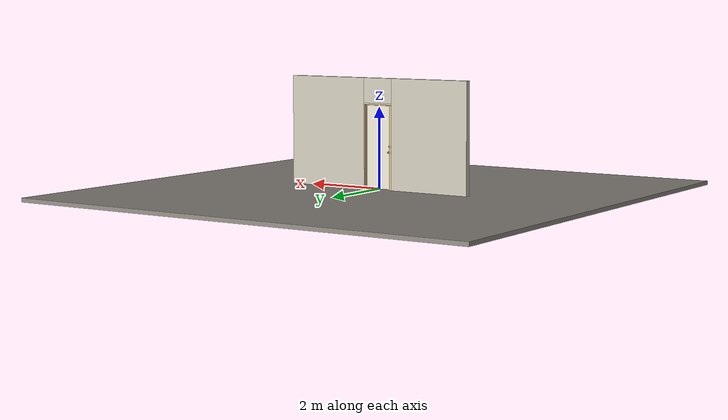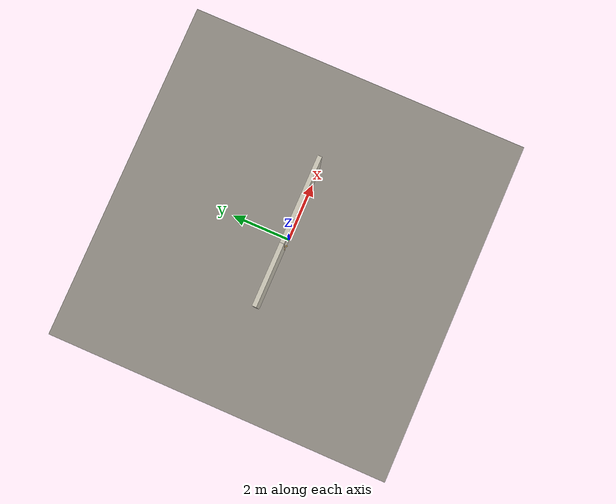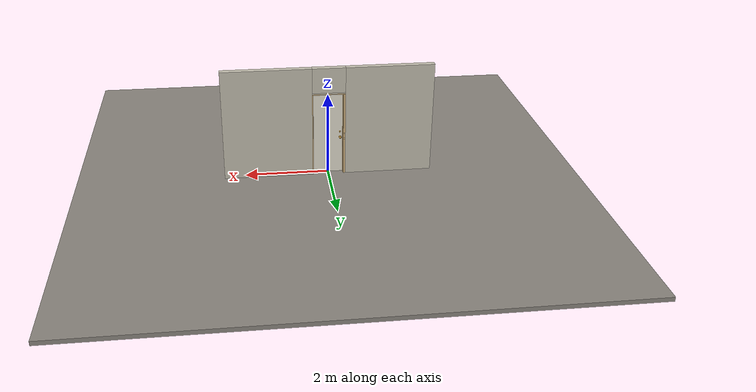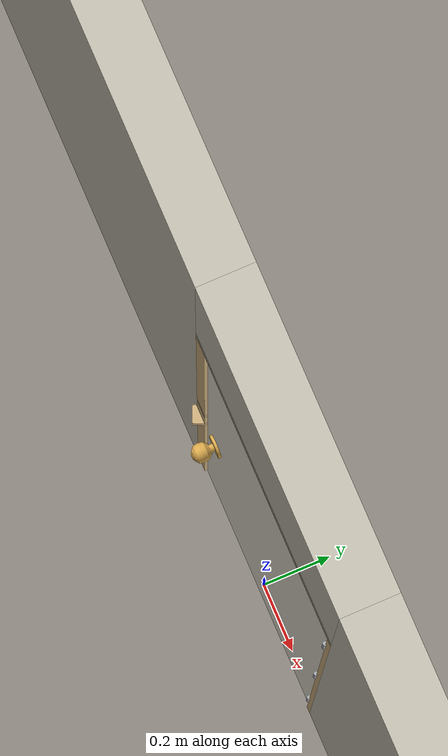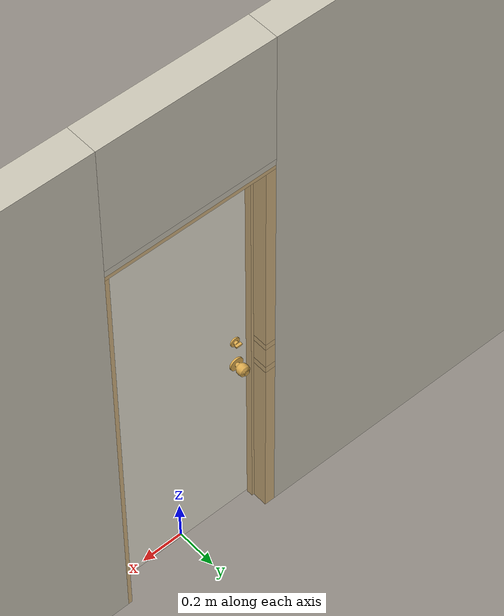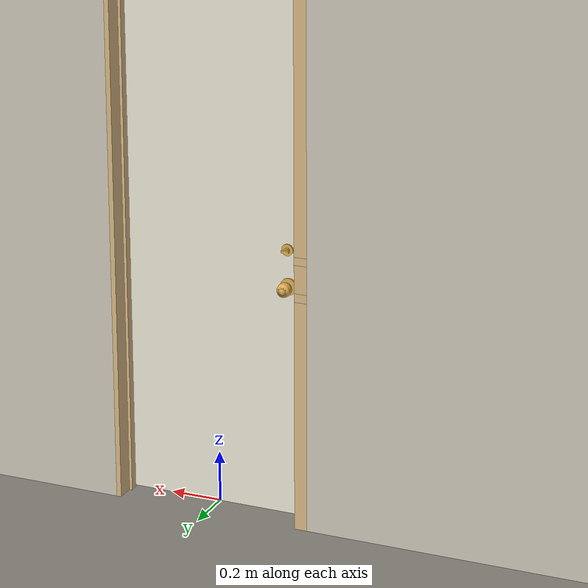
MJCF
<?xml version="1.0" ?>
<mujoco model="db0051_swing_single_simple">
  <compiler angle="radian" meshdir="../../hardware" texturedir="../../textures" autolimits="true" inertiafromgeom="false"/>
  <option timestep="0.002" integrator="implicitfast" cone="elliptic" impratio="10" noslip_iterations="3">
    <flag multiccd="enable"/>
  </option>
  <size memory="16M"/>
  <default>
    <geom condim="4" solref="0.005 1" solimp="0.95 0.99 0.001"/>
    <joint solreflimit="0.005 1" solimplimit="0.95 0.99 0.001"/>
    <tendon solreflimit="0.005 1"/>
    <equality solref="0.002 1"/>
  </default>
  <visual>
    <headlight ambient="0.4 0.4 0.4" diffuse="0.7 0.7 0.7" specular="0.2 0.2 0.2"/>
    <quality shadowsize="4096"/>
    <map znear="0.01" zfar="60"/>
  </visual>
  <asset>
    <mesh name="hinge_96510cf394" file="hinge_96510cf394.obj"/>
    <mesh name="hinge_jamb_7fd4ca52b2" file="hinge_jamb_7fd4ca52b2.obj"/>
    <mesh name="knob_d1888f6f03" file="knob_d1888f6f03.obj"/>
    <mesh name="thumbturn_eb5c9899a3" file="thumbturn_eb5c9899a3.obj"/>
    <material name="mat_floor" rgba="0.55 0.53 0.5 1" specular="0.2" shininess="0.15" reflectance="0"/>
    <material name="mat_wall" rgba="0.78 0.76 0.7 1" specular="0.2" shininess="0.1" reflectance="0"/>
    <material name="mat_leaf" rgba="0.9 0.88 0.82 1" specular="0.2" shininess="0.45" reflectance="0"/>
    <material name="mat_leaf_louver" rgba="0.765 0.748 0.697 1" specular="0.2" shininess="0.4" reflectance="0"/>
    <material name="mat_hinge" rgba="0.65 0.66 0.68 1" specular="0.74" shininess="0.5" reflectance="0.36"/>
    <material name="mat_op_brass" rgba="0.85 0.66 0.3 1" specular="0.8" shininess="0.75" reflectance="0.4"/>
    <material name="mat_trim" rgba="0.85 0.66 0.3 1" specular="0.8" shininess="0.75" reflectance="0.4"/>
    <material name="mat_bolt" rgba="0.85 0.66 0.3 1" specular="0.8" shininess="0.75" reflectance="0.4"/>
    <material name="mat_deadbolt" rgba="0.85 0.66 0.3 1" specular="0.8" shininess="0.75" reflectance="0.4"/>
    <material name="mat_frame" rgba="0.82 0.7 0.5 1" specular="0.2" shininess="0.45" reflectance="0"/>
    <texture name="skybox" type="skybox" builtin="gradient" rgb1="0.6 0.7 0.85" rgb2="0.9 0.92 0.95" width="256" height="256"/>
  </asset>
  <worldbody>
    <light name="sun" pos="1.5 -2.5 4" dir="-0.3 0.5 -0.8" directional="true" diffuse="0.8 0.8 0.8" specular="0.3 0.3 0.3" castshadow="true"/>
    <light name="fill" pos="-1.5 2.5 3" dir="0.3 -0.5 -0.7" directional="true" diffuse="0.35 0.35 0.4" castshadow="false"/>
    <camera name="robot_view" pos="0 -2.494187 1.734312" xyaxes="1 0 0 0 0.26963 0.962964" fovy="52"/>
    <camera name="far_view" pos="0 2.590187 1.734312" xyaxes="-1 0 0 0 -0.26963 0.962964" fovy="52"/>
    <camera name="iso" pos="-1.932062 -2.087438 2.141063" xyaxes="0.741536 -0.670913 0 0.242917 0.268487 0.932151" fovy="46"/>
    <camera name="detail_handle" pos="-0.115 -0.864 1.194" xyaxes="0.97561 0.219512 0 -0.070934 0.315262 0.94635" fovy="38"/>
    <geom name="floor" type="box" size="6 6 0.05" pos="0 0 -0.05" material="mat_floor" group="0" contype="1" conaffinity="1" friction="0.8 0.005 0.0001" density="2400"/>
    <geom name="wall_left" type="box" size="1.046 0.0725 1.35" pos="-1.454 0.048 1.35" material="mat_wall" group="0" contype="1" conaffinity="1" friction="0.6 0.005 0.0001" density="800"/>
    <geom name="wall_right" type="box" size="1.061 0.0725 1.35" pos="1.439 0.048 1.35" material="mat_wall" group="0" contype="1" conaffinity="1" friction="0.6 0.005 0.0001" density="800"/>
    <geom name="wall_header" type="box" size="0.393 0.0725 0.303" pos="-0.015 0.048 2.397" material="mat_wall" group="0" contype="1" conaffinity="1" friction="0.6 0.005 0.0001" density="800"/>
    <geom name="hinge_0_jamb" type="mesh" mesh="hinge_jamb_7fd4ca52b2" pos="0.356 -0.0245 0.259" quat="0 0 1 0" material="mat_hinge" group="1" contype="0" conaffinity="0" density="7850"/>
    <geom name="hinge_1_jamb" type="mesh" mesh="hinge_jamb_7fd4ca52b2" pos="0.356 -0.0245 1.025" quat="0 0 1 0" material="mat_hinge" group="1" contype="0" conaffinity="0" density="7850"/>
    <geom name="hinge_2_jamb" type="mesh" mesh="hinge_jamb_7fd4ca52b2" pos="0.356 -0.0245 1.861" quat="0 0 1 0" material="mat_hinge" group="1" contype="0" conaffinity="0" density="7850"/>
    <geom name="leaf_deadbolt_strike_b" type="box" size="0.0155 0.003 0.0005" pos="-0.3585 0 1.0355" quat="0.5 0.5 0.5 0.5" material="mat_deadbolt" group="1" contype="0" conaffinity="0" density="7800"/>
    <geom name="leaf_deadbolt_strike_l" type="box" size="0.003 0.0155 0.0005" pos="-0.3585 -0.0125 1.054" quat="0.5 0.5 0.5 0.5" material="mat_deadbolt" group="1" contype="0" conaffinity="0" density="7800"/>
    <geom name="leaf_deadbolt_strike_t" type="box" size="0.0155 0.003 0.0005" pos="-0.3585 0 1.0725" quat="0.5 0.5 0.5 0.5" material="mat_deadbolt" group="1" contype="0" conaffinity="0" density="7800"/>
    <geom name="leaf_deadbolt_strike_r" type="box" size="0.003 0.0155 0.0005" pos="-0.3585 0.0125 1.054" quat="0.5 0.5 0.5 0.5" material="mat_deadbolt" group="1" contype="0" conaffinity="0" density="7800"/>
    <geom name="jamb_hinge" type="box" size="0.0095 0.0725 1.0225" pos="0.3685 0.048 1.0225" material="mat_frame" group="0" contype="1" conaffinity="1" friction="0.6 0.005 0.0001" density="400"/>
    <geom name="strike_914_wall_n" type="box" size="0.0245 0.056325 0.0167" pos="-0.3835 0.064175 0.914" material="mat_frame" group="0" contype="1" conaffinity="1" friction="0.6 0.005 0.0001" density="400"/>
    <geom name="strike_914_wall_p" type="box" size="0.0245 0.008 0.0167" pos="-0.3835 -0.01585 0.914" material="mat_frame" group="0" contype="1" conaffinity="1" friction="0.6 0.005 0.0001" density="400"/>
    <geom name="strike_914_ramp" type="box" size="0.0245 0.01649 0.0167" pos="-0.388136 -0.028673 0.914" quat="0.977148 0 0 -0.212558" material="mat_frame" group="0" contype="1" conaffinity="1" friction="0.12 0.005 0.0001" density="400"/>
    <geom name="strike_914_back" type="box" size="0.01615 0.00785 0.0167" pos="-0.39185 0 0.914" material="mat_frame" group="0" contype="1" conaffinity="1" friction="0.6 0.005 0.0001" density="400"/>
    <geom name="strike_1054_wall_n" type="box" size="0.0245 0.0555 0.0155" pos="-0.3835 0.065 1.054" material="mat_frame" group="0" contype="1" conaffinity="1" friction="0.6 0.005 0.0001" density="400"/>
    <geom name="strike_1054_wall_p" type="box" size="0.0245 0.0075 0.0155" pos="-0.3835 -0.017 1.054" material="mat_frame" group="0" contype="1" conaffinity="1" friction="0.6 0.005 0.0001" density="400"/>
    <geom name="strike_1054_back" type="box" size="0.0098 0.0095 0.0155" pos="-0.3982 0 1.054" material="mat_frame" group="0" contype="1" conaffinity="1" friction="0.6 0.005 0.0001" density="400"/>
    <geom name="jamb_strike_0" type="box" size="0.0245 0.0725 0.44865" pos="-0.3835 0.048 0.44865" material="mat_frame" group="0" contype="1" conaffinity="1" friction="0.6 0.005 0.0001" density="400"/>
    <geom name="jamb_strike_1" type="box" size="0.0245 0.0725 0.0539" pos="-0.3835 0.048 0.9846" material="mat_frame" group="0" contype="1" conaffinity="1" friction="0.6 0.005 0.0001" density="400"/>
    <geom name="jamb_strike_2" type="box" size="0.0245 0.0725 0.48775" pos="-0.3835 0.048 1.55725" material="mat_frame" group="0" contype="1" conaffinity="1" friction="0.6 0.005 0.0001" density="400"/>
    <geom name="jamb_head" type="box" size="0.393 0.0725 0.0095" pos="-0.015 0.048 2.0545" material="mat_frame" group="0" contype="1" conaffinity="1" friction="0.6 0.005 0.0001" density="400"/>
    <geom name="head_stud" type="box" size="0.393 0.0725 0.015" pos="-0.015 0.048 2.079" material="mat_wall" group="0" contype="1" conaffinity="1" friction="0.6 0.005 0.0001" density="500"/>
    <geom name="stop_hinge" type="box" size="0.0055 0.016 1.0225" pos="0.3535 0.034 1.0225" material="mat_frame" group="0" contype="1" conaffinity="1" friction="0.6 0.005 0.0001" density="400"/>
    <geom name="stop_strike" type="box" size="0.0055 0.016 1.0225" pos="-0.3535 0.034 1.0225" material="mat_frame" group="0" contype="1" conaffinity="1" friction="0.6 0.005 0.0001" density="400"/>
    <geom name="stop_head" type="box" size="0.359 0.016 0.0055" pos="0 0.034 2.0395" material="mat_frame" group="0" contype="1" conaffinity="1" friction="0.6 0.005 0.0001" density="400"/>
    <site name="approach_point" pos="0 -1.5 0" quat="1 0 0 0" size="0.05" rgba="0.2 0.9 0.2 0.5" group="4"/>
    <site name="goal_point" pos="0 1.5 0" quat="1 0 0 0" size="0.05" rgba="0.2 0.9 0.2 0.5" group="4"/>
    <site name="door_plane_center" pos="0 0 1.0225" quat="1 0 0 0" size="0.02" rgba="0.2 0.9 0.2 0.5" group="4"/>
    <body name="leaf" pos="0.359 0 0">
      <inertial pos="-0.346703 -0.00052 1.025734" mass="11.261904" quat="0.500734 -0.498733 0.501248 0.49928" diaginertia="0.510215862 3.901285773 4.409004949"/>
      <joint name="leaf_hinge" type="hinge" axis="0 0 1" pos="-0.003 -0.0245 0" limited="true" range="0 1.745329" damping="0.143782" frictionloss="0.171487" armature="0.02"/>
      <geom name="leaf_slab" type="box" size="0.3555 0.0175 1.016" pos="-0.3585 0 1.025" material="mat_leaf" group="0" contype="1" conaffinity="1" friction="0.35 0.005 0.0001" density="1"/>
      <geom name="hinge_0" type="mesh" mesh="hinge_96510cf394" pos="-0.003 -0.0245 0.259" quat="0 0 1 0" material="mat_hinge" group="1" contype="0" conaffinity="0" density="7850"/>
      <geom name="hinge_1" type="mesh" mesh="hinge_96510cf394" pos="-0.003 -0.0245 1.025" quat="0 0 1 0" material="mat_hinge" group="1" contype="0" conaffinity="0" density="7850"/>
      <geom name="hinge_2" type="mesh" mesh="hinge_96510cf394" pos="-0.003 -0.0245 1.861" quat="0 0 1 0" material="mat_hinge" group="1" contype="0" conaffinity="0" density="7850"/>
      <geom name="leaf_latch_bolt_faceplate" type="box" size="0.0006 0.01235 0.0267" pos="-0.7134 0 0.914" material="mat_bolt" group="1" contype="0" conaffinity="0" density="8500"/>
      <geom name="leaf_deadbolt_faceplate" type="box" size="0.0006 0.014 0.0245" pos="-0.7134 0 1.054" material="mat_deadbolt" group="1" contype="0" conaffinity="0" density="8500"/>
      <site name="leaf_edge_mid" pos="-0.714 0 1.016" quat="1 0 0 0" size="0.02" rgba="0.2 0.9 0.2 0.5" group="4"/>
      <body name="leaf_handle" pos="-0.654 0 0.914">
        <inertial pos="0 0 0" mass="1.098683" quat="0.5 0.5 0.5 0.5" diaginertia="0.000311555 0.003696071 0.003696071"/>
        <joint name="leaf_handle_hinge" type="hinge" axis="0 1 0" limited="true" range="0 0.87" damping="0.143613" frictionloss="0.038" stiffness="0.5" springref="-0.5" armature="0.01"/>
        <geom name="leaf_handle_knob_n" type="mesh" mesh="knob_d1888f6f03" pos="0 -0.0175 0" quat="0 0 -0.707107 0.707107" material="mat_op_brass" group="1" contype="0" conaffinity="0" density="3000"/>
        <geom name="leaf_handle_knob_col_n" type="sphere" size="0.0243" pos="0 -0.064 0" material="mat_op_brass" group="0" contype="1" conaffinity="1" friction="0.9 0.01 0.0001" density="3000"/>
        <geom name="leaf_handle_knob_neck_n" type="cylinder" size="0.011 0.012" pos="0 -0.0295 0" quat="0.707107 -0.707107 0 0" material="mat_op_brass" group="3" contype="1" conaffinity="1" rgba="0.8 0.3 0.3 0.25" friction="0.6 0.005 0.0001" density="3000"/>
        <geom name="leaf_handle_knob_p" type="mesh" mesh="knob_d1888f6f03" pos="0 0.0175 0" quat="0 0 0.707107 0.707107" material="mat_op_brass" group="1" contype="0" conaffinity="0" density="3000"/>
        <geom name="leaf_handle_knob_col_p" type="sphere" size="0.0243" pos="0 0.064 0" material="mat_op_brass" group="0" contype="1" conaffinity="1" friction="0.9 0.01 0.0001" density="3000"/>
        <geom name="leaf_handle_knob_neck_p" type="cylinder" size="0.011 0.012" pos="0 0.0295 0" quat="0.707107 -0.707107 0 0" material="mat_op_brass" group="3" contype="1" conaffinity="1" rgba="0.8 0.3 0.3 0.25" friction="0.6 0.005 0.0001" density="3000"/>
        <site name="leaf_handle_grip_n" pos="0 -0.064 0" quat="1 0 0 0" size="0.012" rgba="0.2 0.9 0.2 0.5" group="4"/>
        <site name="leaf_handle_grip_p" pos="0 0.064 0" quat="1 0 0 0" size="0.012" rgba="0.2 0.9 0.2 0.5" group="4"/>
      </body>
      <body name="leaf_latch_bolt" pos="-0.714 0 0.914">
        <inertial pos="0.00865 0 0" mass="0.041419" quat="0.92388 0.382683 0 0" diaginertia="0.000000798 0.000005598 0.000005598"/>
        <joint name="leaf_latch_bolt_slide" type="slide" axis="1 0 0" limited="true" range="0 0.0127" damping="2" frictionloss="0.3" stiffness="300" springref="-0.008333" armature="0.1"/>
        <geom name="leaf_latch_bolt_capsule" type="capsule" size="0.00635 0.015" pos="0.00865 0 0" quat="0.707107 0 -0.707107 0" material="mat_bolt" group="0" contype="1" conaffinity="1" friction="0.2 0.005 0.0001" density="8500"/>
      </body>
      <body name="leaf_deadbolt" pos="-0.714 0 1.054">
        <inertial pos="0.0277 0 0" mass="0.18836" quat="0 0 0.707107 0.707107" diaginertia="0.000013829 0.000052194 0.000057986"/>
        <joint name="leaf_deadbolt_slide" type="slide" axis="1 0 0" limited="true" range="0 0.0254" damping="5" frictionloss="1.5" armature="0.1" ref="0.0254"/>
        <geom name="leaf_deadbolt_box" type="box" size="0.0277 0.008 0.0125" pos="0.0277 0 0" material="mat_deadbolt" group="0" contype="1" conaffinity="1" friction="0.3 0.005 0.0001" density="8500"/>
      </body>
      <body name="leaf_deadbolt_thumbturn" pos="-0.649 0.0175 1.054">
        <inertial pos="0 0.012928 0" mass="0.178946" quat="0.000001 -0.707107 0.707107 -0.000001" diaginertia="0.000026045 0.000026215 0.000032438"/>
        <joint name="leaf_deadbolt_thumbturn_hinge" type="hinge" axis="0 -1 0" limited="true" range="0 1.5708" damping="0.05" frictionloss="0.3" armature="0.005" ref="1.5708"/>
        <geom name="leaf_deadbolt_thumbturn_mesh" type="mesh" mesh="thumbturn_eb5c9899a3" pos="0 0 0" quat="0.500001 -0.500001 0.499999 0.499999" material="mat_deadbolt" group="0" contype="1" conaffinity="1" friction="0.6 0.005 0.0001" density="7100"/>
        <geom name="leaf_deadbolt_thumbturn_col" type="box" size="0.006 0.012 0.016" pos="0 0.02 0" quat="0.707105 0 -0.707108 0" material="mat_deadbolt" group="3" contype="1" conaffinity="1" rgba="0.8 0.3 0.3 0.25" friction="0.6 0.005 0.0001" density="7100"/>
      </body>
    </body>
  </worldbody>
  <tendon>
    <fixed name="leaf_latch_bolt_coupling" limited="true" range="0 10">
      <joint joint="leaf_latch_bolt_slide" coef="1"/>
      <joint joint="leaf_handle_hinge" coef="-0.015679"/>
    </fixed>
  </tendon>
  <equality>
    <joint name="leaf_deadbolt_couple" joint1="leaf_deadbolt_slide" joint2="leaf_deadbolt_thumbturn_hinge" polycoef="0 0.01617 0 0 0" active="true"/>
  </equality>
  <contact>
    <exclude body1="leaf_deadbolt" body2="leaf_deadbolt_thumbturn"/>
  </contact>
  <sensor>
    <jointpos name="leaf_hinge_pos" joint="leaf_hinge"/>
    <jointvel name="leaf_hinge_vel" joint="leaf_hinge"/>
    <jointpos name="leaf_handle_hinge_pos" joint="leaf_handle_hinge"/>
    <jointvel name="leaf_handle_hinge_vel" joint="leaf_handle_hinge"/>
    <jointpos name="leaf_latch_bolt_slide_pos" joint="leaf_latch_bolt_slide"/>
    <jointvel name="leaf_latch_bolt_slide_vel" joint="leaf_latch_bolt_slide"/>
    <jointpos name="leaf_deadbolt_slide_pos" joint="leaf_deadbolt_slide"/>
    <jointvel name="leaf_deadbolt_slide_vel" joint="leaf_deadbolt_slide"/>
    <jointpos name="leaf_deadbolt_thumbturn_hinge_pos" joint="leaf_deadbolt_thumbturn_hinge"/>
    <jointvel name="leaf_deadbolt_thumbturn_hinge_vel" joint="leaf_deadbolt_thumbturn_hinge"/>
  </sensor>
</mujoco>
